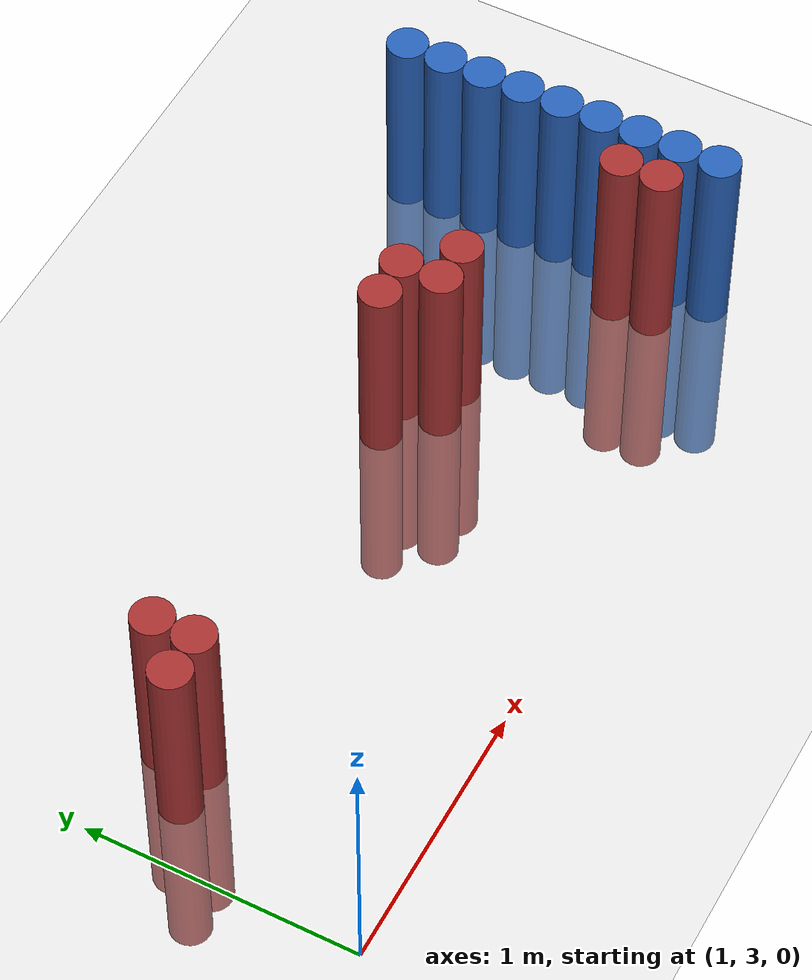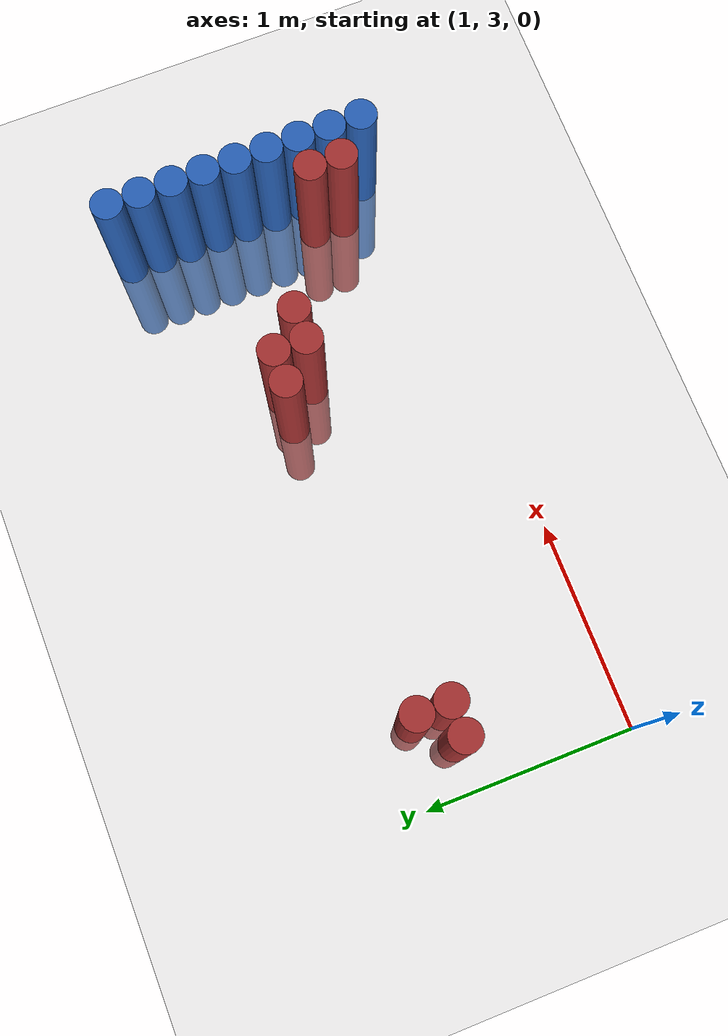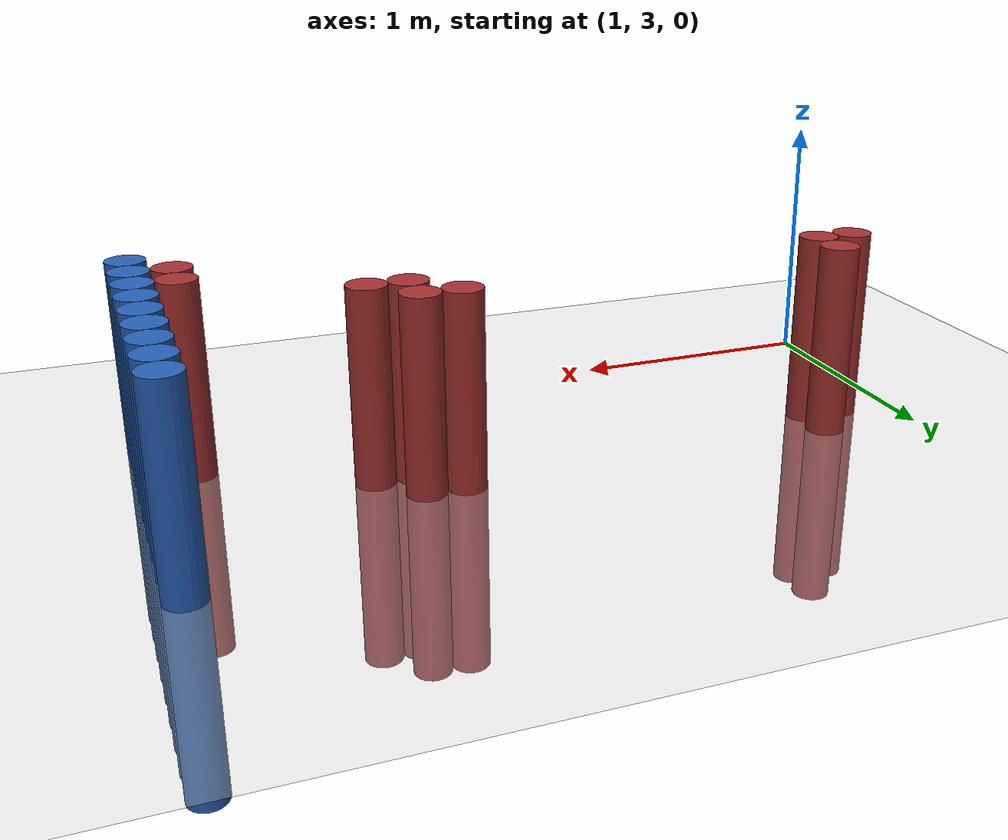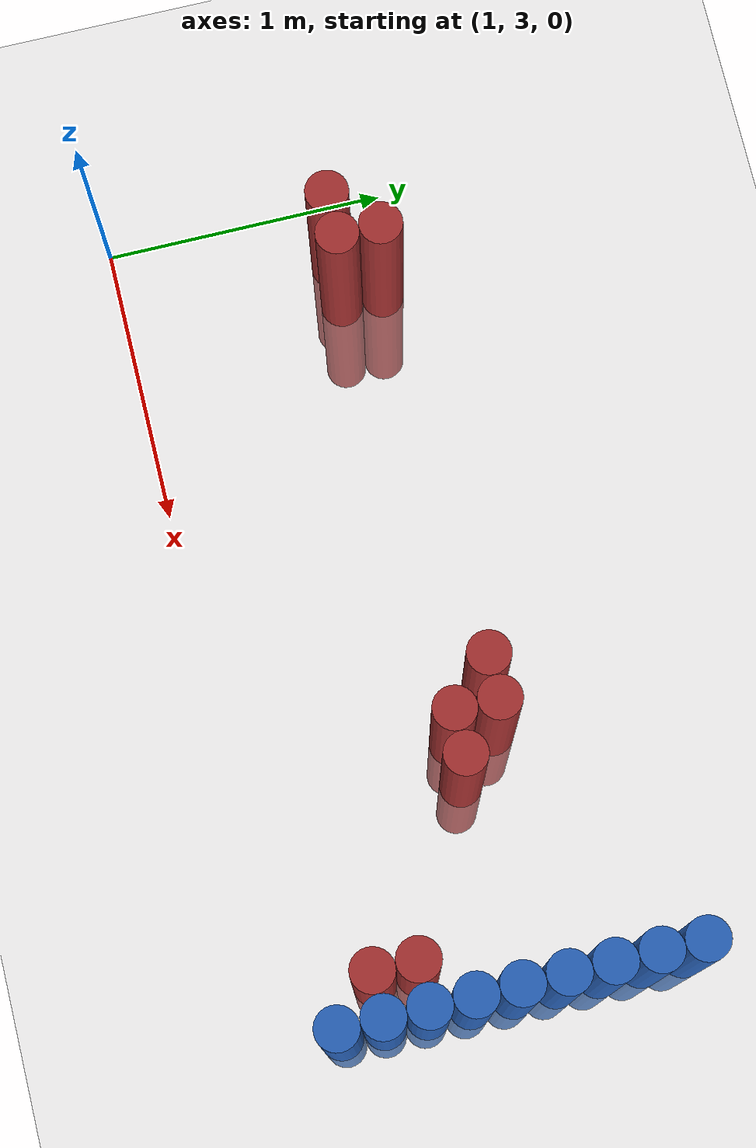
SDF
<sdf version="1.6">
 <world name="default">
  <model name="ground_plane">
   <static>1</static>
   <link name="link">
    <collision name="collision">
     <geometry><plane><normal>0 0 1</normal><size>100 100</size></plane></geometry>
     <surface><friction><ode><mu>100</mu><mu2>50</mu2></ode></friction></surface>
    </collision>
    <visual name="visual">
     <cast_shadows>0</cast_shadows>
     <geometry><plane><normal>0 0 1</normal><size>100 100</size></plane></geometry>
     <material>
      <script><uri>file://media/materials/scripts/gazebo.material</uri><name>Gazebo/Grey</name></script>
     </material>
    </visual>
   </link>
  </model>
  <model name="unit_cylinder_156">
   <static>1</static>
   <pose>3.925000 3.175000 0.000000 0.000000 0.000000 0.000000</pose>
   <link name="link">
    <inertial>
     <mass>1</mass>
     <inertia><ixx>0.145833</ixx><ixy>0</ixy><ixz>0</ixz><iyy>0.145833</iyy><iyz>0</iyz><izz>0.125</izz></inertia>
    </inertial>
    <collision name="collision">
     <geometry><cylinder><radius>0.075000</radius><length>1.5</length></cylinder></geometry>
    </collision>
    <visual name="visual">
     <geometry><cylinder><radius>0.075000</radius><length>1.5</length></cylinder></geometry>
     <material>
      <ambient>0.152000 0.379000 0.720000 1</ambient>
      <diffuse>0.152000 0.379000 0.720000 1</diffuse>
     </material>
     <material>
      <script><name>Gazebo/Grey</name><uri>file://media/materials/scripts/gazebo.material</uri></script>
     </material>
    </visual>
   </link>
  </model>
  <model name="unit_cylinder_158">
   <static>1</static>
   <pose>3.925000 3.325000 0.000000 0.000000 0.000000 0.000000</pose>
   <link name="link">
    <inertial>
     <mass>1</mass>
     <inertia><ixx>0.145833</ixx><ixy>0</ixy><ixz>0</ixz><iyy>0.145833</iyy><iyz>0</iyz><izz>0.125</izz></inertia>
    </inertial>
    <collision name="collision">
     <geometry><cylinder><radius>0.075000</radius><length>1.5</length></cylinder></geometry>
    </collision>
    <visual name="visual">
     <geometry><cylinder><radius>0.075000</radius><length>1.5</length></cylinder></geometry>
     <material>
      <ambient>0.152000 0.379000 0.720000 1</ambient>
      <diffuse>0.152000 0.379000 0.720000 1</diffuse>
     </material>
     <material>
      <script><name>Gazebo/Grey</name><uri>file://media/materials/scripts/gazebo.material</uri></script>
     </material>
    </visual>
   </link>
  </model>
  <model name="unit_cylinder_160">
   <static>1</static>
   <pose>3.925000 3.475000 0.000000 0.000000 0.000000 0.000000</pose>
   <link name="link">
    <inertial>
     <mass>1</mass>
     <inertia><ixx>0.145833</ixx><ixy>0</ixy><ixz>0</ixz><iyy>0.145833</iyy><iyz>0</iyz><izz>0.125</izz></inertia>
    </inertial>
    <collision name="collision">
     <geometry><cylinder><radius>0.075000</radius><length>1.5</length></cylinder></geometry>
    </collision>
    <visual name="visual">
     <geometry><cylinder><radius>0.075000</radius><length>1.5</length></cylinder></geometry>
     <material>
      <ambient>0.152000 0.379000 0.720000 1</ambient>
      <diffuse>0.152000 0.379000 0.720000 1</diffuse>
     </material>
     <material>
      <script><name>Gazebo/Grey</name><uri>file://media/materials/scripts/gazebo.material</uri></script>
     </material>
    </visual>
   </link>
  </model>
  <model name="unit_cylinder_162">
   <static>1</static>
   <pose>3.925000 3.625000 0.000000 0.000000 0.000000 0.000000</pose>
   <link name="link">
    <inertial>
     <mass>1</mass>
     <inertia><ixx>0.145833</ixx><ixy>0</ixy><ixz>0</ixz><iyy>0.145833</iyy><iyz>0</iyz><izz>0.125</izz></inertia>
    </inertial>
    <collision name="collision">
     <geometry><cylinder><radius>0.075000</radius><length>1.5</length></cylinder></geometry>
    </collision>
    <visual name="visual">
     <geometry><cylinder><radius>0.075000</radius><length>1.5</length></cylinder></geometry>
     <material>
      <ambient>0.152000 0.379000 0.720000 1</ambient>
      <diffuse>0.152000 0.379000 0.720000 1</diffuse>
     </material>
     <material>
      <script><name>Gazebo/Grey</name><uri>file://media/materials/scripts/gazebo.material</uri></script>
     </material>
    </visual>
   </link>
  </model>
  <model name="unit_cylinder_164">
   <static>1</static>
   <pose>3.925000 3.775000 0.000000 0.000000 0.000000 0.000000</pose>
   <link name="link">
    <inertial>
     <mass>1</mass>
     <inertia><ixx>0.145833</ixx><ixy>0</ixy><ixz>0</ixz><iyy>0.145833</iyy><iyz>0</iyz><izz>0.125</izz></inertia>
    </inertial>
    <collision name="collision">
     <geometry><cylinder><radius>0.075000</radius><length>1.5</length></cylinder></geometry>
    </collision>
    <visual name="visual">
     <geometry><cylinder><radius>0.075000</radius><length>1.5</length></cylinder></geometry>
     <material>
      <ambient>0.152000 0.379000 0.720000 1</ambient>
      <diffuse>0.152000 0.379000 0.720000 1</diffuse>
     </material>
     <material>
      <script><name>Gazebo/Grey</name><uri>file://media/materials/scripts/gazebo.material</uri></script>
     </material>
    </visual>
   </link>
  </model>
  <model name="unit_cylinder_166">
   <static>1</static>
   <pose>3.925000 3.925000 0.000000 0.000000 0.000000 0.000000</pose>
   <link name="link">
    <inertial>
     <mass>1</mass>
     <inertia><ixx>0.145833</ixx><ixy>0</ixy><ixz>0</ixz><iyy>0.145833</iyy><iyz>0</iyz><izz>0.125</izz></inertia>
    </inertial>
    <collision name="collision">
     <geometry><cylinder><radius>0.075000</radius><length>1.5</length></cylinder></geometry>
    </collision>
    <visual name="visual">
     <geometry><cylinder><radius>0.075000</radius><length>1.5</length></cylinder></geometry>
     <material>
      <ambient>0.152000 0.379000 0.720000 1</ambient>
      <diffuse>0.152000 0.379000 0.720000 1</diffuse>
     </material>
     <material>
      <script><name>Gazebo/Grey</name><uri>file://media/materials/scripts/gazebo.material</uri></script>
     </material>
    </visual>
   </link>
  </model>
  <model name="unit_cylinder_168">
   <static>1</static>
   <pose>3.925000 4.075000 0.000000 0.000000 0.000000 0.000000</pose>
   <link name="link">
    <inertial>
     <mass>1</mass>
     <inertia><ixx>0.145833</ixx><ixy>0</ixy><ixz>0</ixz><iyy>0.145833</iyy><iyz>0</iyz><izz>0.125</izz></inertia>
    </inertial>
    <collision name="collision">
     <geometry><cylinder><radius>0.075000</radius><length>1.5</length></cylinder></geometry>
    </collision>
    <visual name="visual">
     <geometry><cylinder><radius>0.075000</radius><length>1.5</length></cylinder></geometry>
     <material>
      <ambient>0.152000 0.379000 0.720000 1</ambient>
      <diffuse>0.152000 0.379000 0.720000 1</diffuse>
     </material>
     <material>
      <script><name>Gazebo/Grey</name><uri>file://media/materials/scripts/gazebo.material</uri></script>
     </material>
    </visual>
   </link>
  </model>
  <model name="unit_cylinder_170">
   <static>1</static>
   <pose>3.925000 4.225000 0.000000 0.000000 0.000000 0.000000</pose>
   <link name="link">
    <inertial>
     <mass>1</mass>
     <inertia><ixx>0.145833</ixx><ixy>0</ixy><ixz>0</ixz><iyy>0.145833</iyy><iyz>0</iyz><izz>0.125</izz></inertia>
    </inertial>
    <collision name="collision">
     <geometry><cylinder><radius>0.075000</radius><length>1.5</length></cylinder></geometry>
    </collision>
    <visual name="visual">
     <geometry><cylinder><radius>0.075000</radius><length>1.5</length></cylinder></geometry>
     <material>
      <ambient>0.152000 0.379000 0.720000 1</ambient>
      <diffuse>0.152000 0.379000 0.720000 1</diffuse>
     </material>
     <material>
      <script><name>Gazebo/Grey</name><uri>file://media/materials/scripts/gazebo.material</uri></script>
     </material>
    </visual>
   </link>
  </model>
  <model name="unit_cylinder_172">
   <static>1</static>
   <pose>3.925000 4.375000 0.000000 0.000000 0.000000 0.000000</pose>
   <link name="link">
    <inertial>
     <mass>1</mass>
     <inertia><ixx>0.145833</ixx><ixy>0</ixy><ixz>0</ixz><iyy>0.145833</iyy><iyz>0</iyz><izz>0.125</izz></inertia>
    </inertial>
    <collision name="collision">
     <geometry><cylinder><radius>0.075000</radius><length>1.5</length></cylinder></geometry>
    </collision>
    <visual name="visual">
     <geometry><cylinder><radius>0.075000</radius><length>1.5</length></cylinder></geometry>
     <material>
      <ambient>0.152000 0.379000 0.720000 1</ambient>
      <diffuse>0.152000 0.379000 0.720000 1</diffuse>
     </material>
     <material>
      <script><name>Gazebo/Grey</name><uri>file://media/materials/scripts/gazebo.material</uri></script>
     </material>
    </visual>
   </link>
  </model>
  <model name="unit_cylinder_297">
   <static>1</static>
   <pose>1.225000 3.775000 0.000000 0.000000 0.000000 0.000000</pose>
   <link name="link">
    <inertial>
     <mass>1</mass>
     <inertia><ixx>0.145833</ixx><ixy>0</ixy><ixz>0</ixz><iyy>0.145833</iyy><iyz>0</iyz><izz>0.125</izz></inertia>
    </inertial>
    <collision name="collision">
     <geometry><cylinder><radius>0.075000</radius><length>1.5</length></cylinder></geometry>
    </collision>
    <visual name="visual">
     <geometry><cylinder><radius>0.075000</radius><length>1.5</length></cylinder></geometry>
     <material>
      <ambient>0.648000 0.192000 0.192000 1</ambient>
      <diffuse>0.648000 0.192000 0.192000 1</diffuse>
     </material>
     <material>
      <script><name>Gazebo/Grey</name><uri>file://media/materials/scripts/gazebo.material</uri></script>
     </material>
    </visual>
   </link>
  </model>
  <model name="unit_cylinder_298">
   <static>1</static>
   <pose>1.375000 3.775000 0.000000 0.000000 0.000000 0.000000</pose>
   <link name="link">
    <inertial>
     <mass>1</mass>
     <inertia><ixx>0.145833</ixx><ixy>0</ixy><ixz>0</ixz><iyy>0.145833</iyy><iyz>0</iyz><izz>0.125</izz></inertia>
    </inertial>
    <collision name="collision">
     <geometry><cylinder><radius>0.075000</radius><length>1.5</length></cylinder></geometry>
    </collision>
    <visual name="visual">
     <geometry><cylinder><radius>0.075000</radius><length>1.5</length></cylinder></geometry>
     <material>
      <ambient>0.648000 0.192000 0.192000 1</ambient>
      <diffuse>0.648000 0.192000 0.192000 1</diffuse>
     </material>
     <material>
      <script><name>Gazebo/Grey</name><uri>file://media/materials/scripts/gazebo.material</uri></script>
     </material>
    </visual>
   </link>
  </model>
  <model name="unit_cylinder_299">
   <static>1</static>
   <pose>1.375000 3.925000 0.000000 0.000000 0.000000 0.000000</pose>
   <link name="link">
    <inertial>
     <mass>1</mass>
     <inertia><ixx>0.145833</ixx><ixy>0</ixy><ixz>0</ixz><iyy>0.145833</iyy><iyz>0</iyz><izz>0.125</izz></inertia>
    </inertial>
    <collision name="collision">
     <geometry><cylinder><radius>0.075000</radius><length>1.5</length></cylinder></geometry>
    </collision>
    <visual name="visual">
     <geometry><cylinder><radius>0.075000</radius><length>1.5</length></cylinder></geometry>
     <material>
      <ambient>0.648000 0.192000 0.192000 1</ambient>
      <diffuse>0.648000 0.192000 0.192000 1</diffuse>
     </material>
     <material>
      <script><name>Gazebo/Grey</name><uri>file://media/materials/scripts/gazebo.material</uri></script>
     </material>
    </visual>
   </link>
  </model>
  <model name="unit_cylinder_308">
   <static>1</static>
   <pose>2.875000 3.925000 0.000000 0.000000 0.000000 0.000000</pose>
   <link name="link">
    <inertial>
     <mass>1</mass>
     <inertia><ixx>0.145833</ixx><ixy>0</ixy><ixz>0</ixz><iyy>0.145833</iyy><iyz>0</iyz><izz>0.125</izz></inertia>
    </inertial>
    <collision name="collision">
     <geometry><cylinder><radius>0.075000</radius><length>1.5</length></cylinder></geometry>
    </collision>
    <visual name="visual">
     <geometry><cylinder><radius>0.075000</radius><length>1.5</length></cylinder></geometry>
     <material>
      <ambient>0.648000 0.192000 0.192000 1</ambient>
      <diffuse>0.648000 0.192000 0.192000 1</diffuse>
     </material>
     <material>
      <script><name>Gazebo/Grey</name><uri>file://media/materials/scripts/gazebo.material</uri></script>
     </material>
    </visual>
   </link>
  </model>
  <model name="unit_cylinder_310">
   <static>1</static>
   <pose>3.025000 3.775000 0.000000 0.000000 0.000000 0.000000</pose>
   <link name="link">
    <inertial>
     <mass>1</mass>
     <inertia><ixx>0.145833</ixx><ixy>0</ixy><ixz>0</ixz><iyy>0.145833</iyy><iyz>0</iyz><izz>0.125</izz></inertia>
    </inertial>
    <collision name="collision">
     <geometry><cylinder><radius>0.075000</radius><length>1.5</length></cylinder></geometry>
    </collision>
    <visual name="visual">
     <geometry><cylinder><radius>0.075000</radius><length>1.5</length></cylinder></geometry>
     <material>
      <ambient>0.648000 0.192000 0.192000 1</ambient>
      <diffuse>0.648000 0.192000 0.192000 1</diffuse>
     </material>
     <material>
      <script><name>Gazebo/Grey</name><uri>file://media/materials/scripts/gazebo.material</uri></script>
     </material>
    </visual>
   </link>
  </model>
  <model name="unit_cylinder_311">
   <static>1</static>
   <pose>3.025000 3.925000 0.000000 0.000000 0.000000 0.000000</pose>
   <link name="link">
    <inertial>
     <mass>1</mass>
     <inertia><ixx>0.145833</ixx><ixy>0</ixy><ixz>0</ixz><iyy>0.145833</iyy><iyz>0</iyz><izz>0.125</izz></inertia>
    </inertial>
    <collision name="collision">
     <geometry><cylinder><radius>0.075000</radius><length>1.5</length></cylinder></geometry>
    </collision>
    <visual name="visual">
     <geometry><cylinder><radius>0.075000</radius><length>1.5</length></cylinder></geometry>
     <material>
      <ambient>0.648000 0.192000 0.192000 1</ambient>
      <diffuse>0.648000 0.192000 0.192000 1</diffuse>
     </material>
     <material>
      <script><name>Gazebo/Grey</name><uri>file://media/materials/scripts/gazebo.material</uri></script>
     </material>
    </visual>
   </link>
  </model>
  <model name="unit_cylinder_314">
   <static>1</static>
   <pose>3.175000 3.775000 0.000000 0.000000 0.000000 0.000000</pose>
   <link name="link">
    <inertial>
     <mass>1</mass>
     <inertia><ixx>0.145833</ixx><ixy>0</ixy><ixz>0</ixz><iyy>0.145833</iyy><iyz>0</iyz><izz>0.125</izz></inertia>
    </inertial>
    <collision name="collision">
     <geometry><cylinder><radius>0.075000</radius><length>1.5</length></cylinder></geometry>
    </collision>
    <visual name="visual">
     <geometry><cylinder><radius>0.075000</radius><length>1.5</length></cylinder></geometry>
     <material>
      <ambient>0.648000 0.192000 0.192000 1</ambient>
      <diffuse>0.648000 0.192000 0.192000 1</diffuse>
     </material>
     <material>
      <script><name>Gazebo/Grey</name><uri>file://media/materials/scripts/gazebo.material</uri></script>
     </material>
    </visual>
   </link>
  </model>
  <model name="unit_cylinder_329">
   <static>1</static>
   <pose>3.775000 3.325000 0.000000 0.000000 0.000000 0.000000</pose>
   <link name="link">
    <inertial>
     <mass>1</mass>
     <inertia><ixx>0.145833</ixx><ixy>0</ixy><ixz>0</ixz><iyy>0.145833</iyy><iyz>0</iyz><izz>0.125</izz></inertia>
    </inertial>
    <collision name="collision">
     <geometry><cylinder><radius>0.075000</radius><length>1.5</length></cylinder></geometry>
    </collision>
    <visual name="visual">
     <geometry><cylinder><radius>0.075000</radius><length>1.5</length></cylinder></geometry>
     <material>
      <ambient>0.648000 0.192000 0.192000 1</ambient>
      <diffuse>0.648000 0.192000 0.192000 1</diffuse>
     </material>
     <material>
      <script><name>Gazebo/Grey</name><uri>file://media/materials/scripts/gazebo.material</uri></script>
     </material>
    </visual>
   </link>
  </model>
  <model name="unit_cylinder_330">
   <static>1</static>
   <pose>3.775000 3.475000 0.000000 0.000000 0.000000 0.000000</pose>
   <link name="link">
    <inertial>
     <mass>1</mass>
     <inertia><ixx>0.145833</ixx><ixy>0</ixy><ixz>0</ixz><iyy>0.145833</iyy><iyz>0</iyz><izz>0.125</izz></inertia>
    </inertial>
    <collision name="collision">
     <geometry><cylinder><radius>0.075000</radius><length>1.5</length></cylinder></geometry>
    </collision>
    <visual name="visual">
     <geometry><cylinder><radius>0.075000</radius><length>1.5</length></cylinder></geometry>
     <material>
      <ambient>0.648000 0.192000 0.192000 1</ambient>
      <diffuse>0.648000 0.192000 0.192000 1</diffuse>
     </material>
     <material>
      <script><name>Gazebo/Grey</name><uri>file://media/materials/scripts/gazebo.material</uri></script>
     </material>
    </visual>
   </link>
  </model>
  <model name="unit_cylinder_365">
   <static>1</static>
   <pose>3.925000 3.175000 0.000000 0.000000 0.000000 0.000000</pose>
   <link name="link">
    <inertial>
     <mass>1</mass>
     <inertia><ixx>0.145833</ixx><ixy>0</ixy><ixz>0</ixz><iyy>0.145833</iyy><iyz>0</iyz><izz>0.125</izz></inertia>
    </inertial>
    <collision name="collision">
     <geometry><cylinder><radius>0.075000</radius><length>1.5</length></cylinder></geometry>
    </collision>
    <visual name="visual">
     <geometry><cylinder><radius>0.075000</radius><length>1.5</length></cylinder></geometry>
     <material>
      <ambient>0.152000 0.379000 0.720000 1</ambient>
      <diffuse>0.152000 0.379000 0.720000 1</diffuse>
     </material>
     <material>
      <script><name>Gazebo/Grey</name><uri>file://media/materials/scripts/gazebo.material</uri></script>
     </material>
    </visual>
   </link>
  </model>
  <model name="unit_cylinder_366">
   <static>1</static>
   <pose>3.925000 3.325000 0.000000 0.000000 0.000000 0.000000</pose>
   <link name="link">
    <inertial>
     <mass>1</mass>
     <inertia><ixx>0.145833</ixx><ixy>0</ixy><ixz>0</ixz><iyy>0.145833</iyy><iyz>0</iyz><izz>0.125</izz></inertia>
    </inertial>
    <collision name="collision">
     <geometry><cylinder><radius>0.075000</radius><length>1.5</length></cylinder></geometry>
    </collision>
    <visual name="visual">
     <geometry><cylinder><radius>0.075000</radius><length>1.5</length></cylinder></geometry>
     <material>
      <ambient>0.152000 0.379000 0.720000 1</ambient>
      <diffuse>0.152000 0.379000 0.720000 1</diffuse>
     </material>
     <material>
      <script><name>Gazebo/Grey</name><uri>file://media/materials/scripts/gazebo.material</uri></script>
     </material>
    </visual>
   </link>
  </model>
  <model name="unit_cylinder_367">
   <static>1</static>
   <pose>3.925000 3.475000 0.000000 0.000000 0.000000 0.000000</pose>
   <link name="link">
    <inertial>
     <mass>1</mass>
     <inertia><ixx>0.145833</ixx><ixy>0</ixy><ixz>0</ixz><iyy>0.145833</iyy><iyz>0</iyz><izz>0.125</izz></inertia>
    </inertial>
    <collision name="collision">
     <geometry><cylinder><radius>0.075000</radius><length>1.5</length></cylinder></geometry>
    </collision>
    <visual name="visual">
     <geometry><cylinder><radius>0.075000</radius><length>1.5</length></cylinder></geometry>
     <material>
      <ambient>0.152000 0.379000 0.720000 1</ambient>
      <diffuse>0.152000 0.379000 0.720000 1</diffuse>
     </material>
     <material>
      <script><name>Gazebo/Grey</name><uri>file://media/materials/scripts/gazebo.material</uri></script>
     </material>
    </visual>
   </link>
  </model>
  <model name="unit_cylinder_368">
   <static>1</static>
   <pose>3.925000 3.625000 0.000000 0.000000 0.000000 0.000000</pose>
   <link name="link">
    <inertial>
     <mass>1</mass>
     <inertia><ixx>0.145833</ixx><ixy>0</ixy><ixz>0</ixz><iyy>0.145833</iyy><iyz>0</iyz><izz>0.125</izz></inertia>
    </inertial>
    <collision name="collision">
     <geometry><cylinder><radius>0.075000</radius><length>1.5</length></cylinder></geometry>
    </collision>
    <visual name="visual">
     <geometry><cylinder><radius>0.075000</radius><length>1.5</length></cylinder></geometry>
     <material>
      <ambient>0.152000 0.379000 0.720000 1</ambient>
      <diffuse>0.152000 0.379000 0.720000 1</diffuse>
     </material>
     <material>
      <script><name>Gazebo/Grey</name><uri>file://media/materials/scripts/gazebo.material</uri></script>
     </material>
    </visual>
   </link>
  </model>
  <model name="unit_cylinder_369">
   <static>1</static>
   <pose>3.925000 3.775000 0.000000 0.000000 0.000000 0.000000</pose>
   <link name="link">
    <inertial>
     <mass>1</mass>
     <inertia><ixx>0.145833</ixx><ixy>0</ixy><ixz>0</ixz><iyy>0.145833</iyy><iyz>0</iyz><izz>0.125</izz></inertia>
    </inertial>
    <collision name="collision">
     <geometry><cylinder><radius>0.075000</radius><length>1.5</length></cylinder></geometry>
    </collision>
    <visual name="visual">
     <geometry><cylinder><radius>0.075000</radius><length>1.5</length></cylinder></geometry>
     <material>
      <ambient>0.152000 0.379000 0.720000 1</ambient>
      <diffuse>0.152000 0.379000 0.720000 1</diffuse>
     </material>
     <material>
      <script><name>Gazebo/Grey</name><uri>file://media/materials/scripts/gazebo.material</uri></script>
     </material>
    </visual>
   </link>
  </model>
  <model name="unit_cylinder_370">
   <static>1</static>
   <pose>3.925000 3.925000 0.000000 0.000000 0.000000 0.000000</pose>
   <link name="link">
    <inertial>
     <mass>1</mass>
     <inertia><ixx>0.145833</ixx><ixy>0</ixy><ixz>0</ixz><iyy>0.145833</iyy><iyz>0</iyz><izz>0.125</izz></inertia>
    </inertial>
    <collision name="collision">
     <geometry><cylinder><radius>0.075000</radius><length>1.5</length></cylinder></geometry>
    </collision>
    <visual name="visual">
     <geometry><cylinder><radius>0.075000</radius><length>1.5</length></cylinder></geometry>
     <material>
      <ambient>0.152000 0.379000 0.720000 1</ambient>
      <diffuse>0.152000 0.379000 0.720000 1</diffuse>
     </material>
     <material>
      <script><name>Gazebo/Grey</name><uri>file://media/materials/scripts/gazebo.material</uri></script>
     </material>
    </visual>
   </link>
  </model>
  <model name="unit_cylinder_371">
   <static>1</static>
   <pose>3.925000 4.075000 0.000000 0.000000 0.000000 0.000000</pose>
   <link name="link">
    <inertial>
     <mass>1</mass>
     <inertia><ixx>0.145833</ixx><ixy>0</ixy><ixz>0</ixz><iyy>0.145833</iyy><iyz>0</iyz><izz>0.125</izz></inertia>
    </inertial>
    <collision name="collision">
     <geometry><cylinder><radius>0.075000</radius><length>1.5</length></cylinder></geometry>
    </collision>
    <visual name="visual">
     <geometry><cylinder><radius>0.075000</radius><length>1.5</length></cylinder></geometry>
     <material>
      <ambient>0.152000 0.379000 0.720000 1</ambient>
      <diffuse>0.152000 0.379000 0.720000 1</diffuse>
     </material>
     <material>
      <script><name>Gazebo/Grey</name><uri>file://media/materials/scripts/gazebo.material</uri></script>
     </material>
    </visual>
   </link>
  </model>
  <model name="unit_cylinder_372">
   <static>1</static>
   <pose>3.925000 4.225000 0.000000 0.000000 0.000000 0.000000</pose>
   <link name="link">
    <inertial>
     <mass>1</mass>
     <inertia><ixx>0.145833</ixx><ixy>0</ixy><ixz>0</ixz><iyy>0.145833</iyy><iyz>0</iyz><izz>0.125</izz></inertia>
    </inertial>
    <collision name="collision">
     <geometry><cylinder><radius>0.075000</radius><length>1.5</length></cylinder></geometry>
    </collision>
    <visual name="visual">
     <geometry><cylinder><radius>0.075000</radius><length>1.5</length></cylinder></geometry>
     <material>
      <ambient>0.152000 0.379000 0.720000 1</ambient>
      <diffuse>0.152000 0.379000 0.720000 1</diffuse>
     </material>
     <material>
      <script><name>Gazebo/Grey</name><uri>file://media/materials/scripts/gazebo.material</uri></script>
     </material>
    </visual>
   </link>
  </model>
  <model name="unit_cylinder_373">
   <static>1</static>
   <pose>3.925000 4.375000 0.000000 0.000000 0.000000 0.000000</pose>
   <link name="link">
    <inertial>
     <mass>1</mass>
     <inertia><ixx>0.145833</ixx><ixy>0</ixy><ixz>0</ixz><iyy>0.145833</iyy><iyz>0</iyz><izz>0.125</izz></inertia>
    </inertial>
    <collision name="collision">
     <geometry><cylinder><radius>0.075000</radius><length>1.5</length></cylinder></geometry>
    </collision>
    <visual name="visual">
     <geometry><cylinder><radius>0.075000</radius><length>1.5</length></cylinder></geometry>
     <material>
      <ambient>0.152000 0.379000 0.720000 1</ambient>
      <diffuse>0.152000 0.379000 0.720000 1</diffuse>
     </material>
     <material>
      <script><name>Gazebo/Grey</name><uri>file://media/materials/scripts/gazebo.material</uri></script>
     </material>
    </visual>
   </link>
  </model>
 </world>
</sdf>
